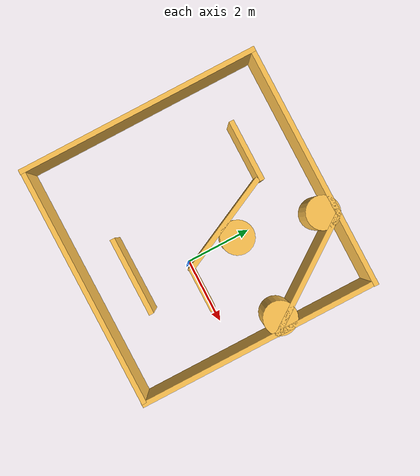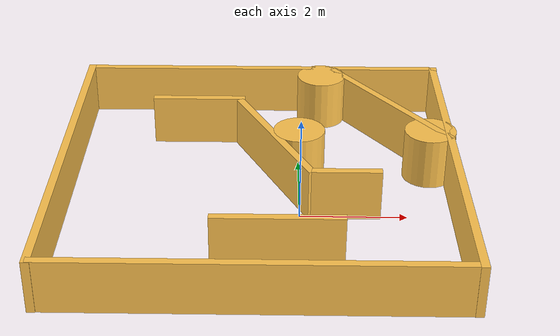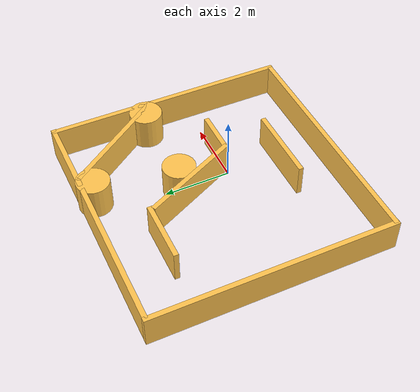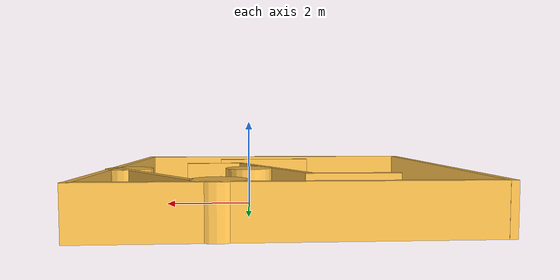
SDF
<?xml version='1.0'?>
<sdf version='1.6'>
  <model name='Maze_ql_1'>
    <link name='Wall_10'>
      <pose frame=''>-2.02568 2.92333 0 0 -0 3.14159</pose>
      <self_collide>0</self_collide>
      <kinematic>0</kinematic>
      <visual name='Wall_10_Visual'>
        <pose frame=''>0 0 0.5 0 -0 0</pose>
        <geometry>
          <box>
            <size>1.8711 0.15 1</size>
          </box>
        </geometry>
        <material>
          <script>
            <uri>file://media/materials/scripts/gazebo.material</uri>
            <name>Gazebo/Grey</name>
          </script>
          <ambient>1 0.764706 0.305882 1</ambient>
          <diffuse>0.7 0.7 0.7 1</diffuse>
          <specular>0.01 0.01 0.01 1</specular>
          <emissive>0 0 0 1</emissive>
          <shader type='pixel'/>
        </material>
        <cast_shadows>1</cast_shadows>
        <transparency>0</transparency>
      </visual>
      <collision name='Wall_10_Collision'>
        <laser_retro>0</laser_retro>
        <max_contacts>10</max_contacts>
        <pose frame=''>0 0 0.5 0 -0 0</pose>
        <geometry>
          <box>
            <size>1.8711 0.15 1</size>
          </box>
        </geometry>
        <surface>
          <friction>
            <ode>
              <mu>1</mu>
              <mu2>1</mu2>
              <fdir1>0 0 0</fdir1>
              <slip1>0</slip1>
              <slip2>0</slip2>
            </ode>
            <torsional>
              <coefficient>1</coefficient>
              <patch_radius>0</patch_radius>
              <surface_radius>0</surface_radius>
              <use_patch_radius>1</use_patch_radius>
              <ode>
                <slip>0</slip>
              </ode>
            </torsional>
          </friction>
          <bounce>
            <restitution_coefficient>0</restitution_coefficient>
            <threshold>1e+06</threshold>
          </bounce>
          <contact>
            <collide_without_contact>0</collide_without_contact>
            <collide_without_contact_bitmask>1</collide_without_contact_bitmask>
            <collide_bitmask>1</collide_bitmask>
            <ode>
              <soft_cfm>0</soft_cfm>
              <soft_erp>0.2</soft_erp>
              <kp>1e+13</kp>
              <kd>1</kd>
              <max_vel>0.01</max_vel>
              <min_depth>0</min_depth>
            </ode>
            <bullet>
              <split_impulse>1</split_impulse>
              <split_impulse_penetration_threshold>-0.01</split_impulse_penetration_threshold>
              <soft_cfm>0</soft_cfm>
              <soft_erp>0.2</soft_erp>
              <kp>1e+13</kp>
              <kd>1</kd>
            </bullet>
          </contact>
        </surface>
      </collision>
    </link>
    <link name='Wall_11_clone'>
      <pose frame=''>-4.44208 0.738947 0 0 0 -1.5708</pose>
      <self_collide>0</self_collide>
      <kinematic>0</kinematic>
      <visual name='ModelPreview_2::Wall_11_clone::Wall_11_Visual'>
        <pose frame=''>0 0 0.5 0 -0 0</pose>
        <geometry>
          <box>
            <size>7.42809 0.15 1</size>
          </box>
        </geometry>
        <material>
          <script>
            <uri>file://media/materials/scripts/gazebo.material</uri>
            <name>Gazebo/Grey</name>
          </script>
          <ambient>1 0.764706 0.305882 1</ambient>
          <diffuse>0.7 0.7 0.7 1</diffuse>
          <specular>0.01 0.01 0.01 1</specular>
          <emissive>0 0 0 1</emissive>
          <shader type='pixel'/>
        </material>
        <cast_shadows>1</cast_shadows>
        <transparency>0</transparency>
      </visual>
      <collision name='Wall_11_Collision'>
        <laser_retro>0</laser_retro>
        <max_contacts>10</max_contacts>
        <pose frame=''>0 0 0.5 0 -0 0</pose>
        <geometry>
          <box>
            <size>7.42809 0.15 1</size>
          </box>
        </geometry>
        <surface>
          <friction>
            <ode>
              <mu>1</mu>
              <mu2>1</mu2>
              <fdir1>0 0 0</fdir1>
              <slip1>0</slip1>
              <slip2>0</slip2>
            </ode>
            <torsional>
              <coefficient>1</coefficient>
              <patch_radius>0</patch_radius>
              <surface_radius>0</surface_radius>
              <use_patch_radius>1</use_patch_radius>
              <ode>
                <slip>0</slip>
              </ode>
            </torsional>
          </friction>
          <bounce>
            <restitution_coefficient>0</restitution_coefficient>
            <threshold>1e+06</threshold>
          </bounce>
          <contact>
            <collide_without_contact>0</collide_without_contact>
            <collide_without_contact_bitmask>1</collide_without_contact_bitmask>
            <collide_bitmask>1</collide_bitmask>
            <ode>
              <soft_cfm>0</soft_cfm>
              <soft_erp>0.2</soft_erp>
              <kp>1e+13</kp>
              <kd>1</kd>
              <max_vel>0.01</max_vel>
              <min_depth>0</min_depth>
            </ode>
            <bullet>
              <split_impulse>1</split_impulse>
              <split_impulse_penetration_threshold>-0.01</split_impulse_penetration_threshold>
              <soft_cfm>0</soft_cfm>
              <soft_erp>0.2</soft_erp>
              <kp>1e+13</kp>
              <kd>1</kd>
            </bullet>
          </contact>
        </surface>
      </collision>
    </link>
    <link name='Wall_14'>
      <pose frame=''>-0.409926 -1.55115 0 0 -0 3.14159</pose>
      <self_collide>0</self_collide>
      <kinematic>0</kinematic>
      <visual name='Wall_14_Visual'>
        <pose frame=''>0 0 0.5 0 -0 0</pose>
        <geometry>
          <box>
            <size>2.36648 0.15 1</size>
          </box>
        </geometry>
        <material>
          <script>
            <uri>file://media/materials/scripts/gazebo.material</uri>
            <name>Gazebo/Grey</name>
          </script>
          <ambient>1 0.764706 0.305882 1</ambient>
          <diffuse>0.7 0.7 0.7 1</diffuse>
          <specular>0.01 0.01 0.01 1</specular>
          <emissive>0 0 0 1</emissive>
          <shader type='pixel'/>
        </material>
        <cast_shadows>1</cast_shadows>
        <transparency>0</transparency>
      </visual>
      <collision name='Wall_14_Collision'>
        <laser_retro>0</laser_retro>
        <max_contacts>10</max_contacts>
        <pose frame=''>0 0 0.5 0 -0 0</pose>
        <geometry>
          <box>
            <size>2.36648 0.15 1</size>
          </box>
        </geometry>
        <surface>
          <friction>
            <ode>
              <mu>1</mu>
              <mu2>1</mu2>
              <fdir1>0 0 0</fdir1>
              <slip1>0</slip1>
              <slip2>0</slip2>
            </ode>
            <torsional>
              <coefficient>1</coefficient>
              <patch_radius>0</patch_radius>
              <surface_radius>0</surface_radius>
              <use_patch_radius>1</use_patch_radius>
              <ode>
                <slip>0</slip>
              </ode>
            </torsional>
          </friction>
          <bounce>
            <restitution_coefficient>0</restitution_coefficient>
            <threshold>1e+06</threshold>
          </bounce>
          <contact>
            <collide_without_contact>0</collide_without_contact>
            <collide_without_contact_bitmask>1</collide_without_contact_bitmask>
            <collide_bitmask>1</collide_bitmask>
            <ode>
              <soft_cfm>0</soft_cfm>
              <soft_erp>0.2</soft_erp>
              <kp>1e+13</kp>
              <kd>1</kd>
              <max_vel>0.01</max_vel>
              <min_depth>0</min_depth>
            </ode>
            <bullet>
              <split_impulse>1</split_impulse>
              <split_impulse_penetration_threshold>-0.01</split_impulse_penetration_threshold>
              <soft_cfm>0</soft_cfm>
              <soft_erp>0.2</soft_erp>
              <kp>1e+13</kp>
              <kd>1</kd>
            </bullet>
          </contact>
        </surface>
      </collision>
    </link>
    <link name='Wall_19'>
      <pose frame=''>0.837565 0.010614 0 0 -0 3.14159</pose>
      <self_collide>0</self_collide>
      <kinematic>0</kinematic>
      <visual name='Wall_19_Visual'>
        <pose frame=''>0 0 0.5 0 -0 0</pose>
        <geometry>
          <box>
            <size>1.32777 0.15 1</size>
          </box>
        </geometry>
        <material>
          <script>
            <uri>file://media/materials/scripts/gazebo.material</uri>
            <name>Gazebo/Grey</name>
          </script>
          <ambient>1 0.764706 0.305882 1</ambient>
          <diffuse>0.7 0.7 0.7 1</diffuse>
          <specular>0.01 0.01 0.01 1</specular>
          <emissive>0 0 0 1</emissive>
          <shader type='pixel'/>
        </material>
        <cast_shadows>1</cast_shadows>
        <transparency>0</transparency>
      </visual>
      <collision name='Wall_19_Collision'>
        <laser_retro>0</laser_retro>
        <max_contacts>10</max_contacts>
        <pose frame=''>0 0 0.5 0 -0 0</pose>
        <geometry>
          <box>
            <size>1.32777 0.15 1</size>
          </box>
        </geometry>
        <surface>
          <friction>
            <ode>
              <mu>1</mu>
              <mu2>1</mu2>
              <fdir1>0 0 0</fdir1>
              <slip1>0</slip1>
              <slip2>0</slip2>
            </ode>
            <torsional>
              <coefficient>1</coefficient>
              <patch_radius>0</patch_radius>
              <surface_radius>0</surface_radius>
              <use_patch_radius>1</use_patch_radius>
              <ode>
                <slip>0</slip>
              </ode>
            </torsional>
          </friction>
          <bounce>
            <restitution_coefficient>0</restitution_coefficient>
            <threshold>1e+06</threshold>
          </bounce>
          <contact>
            <collide_without_contact>0</collide_without_contact>
            <collide_without_contact_bitmask>1</collide_without_contact_bitmask>
            <collide_bitmask>1</collide_bitmask>
            <ode>
              <soft_cfm>0</soft_cfm>
              <soft_erp>0.2</soft_erp>
              <kp>1e+13</kp>
              <kd>1</kd>
              <max_vel>0.01</max_vel>
              <min_depth>0</min_depth>
            </ode>
            <bullet>
              <split_impulse>1</split_impulse>
              <split_impulse_penetration_threshold>-0.01</split_impulse_penetration_threshold>
              <soft_cfm>0</soft_cfm>
              <soft_erp>0.2</soft_erp>
              <kp>1e+13</kp>
              <kd>1</kd>
            </bullet>
          </contact>
        </surface>
      </collision>
    </link>
    <link name='Wall_20'>
      <pose frame=''>-0.484506 1.39698 0 0 -0 2.02352</pose>
      <self_collide>0</self_collide>
      <kinematic>0</kinematic>
      <visual name='Wall_20_Visual'>
        <pose frame=''>0 0 0.5 0 -0 0</pose>
        <geometry>
          <box>
            <size>3.22686 0.15 1</size>
          </box>
        </geometry>
        <material>
          <script>
            <uri>file://media/materials/scripts/gazebo.material</uri>
            <name>Gazebo/Grey</name>
          </script>
          <ambient>1 0.764706 0.305882 1</ambient>
          <diffuse>0.7 0.7 0.7 1</diffuse>
          <specular>0.01 0.01 0.01 1</specular>
          <emissive>0 0 0 1</emissive>
          <shader type='pixel'/>
        </material>
        <cast_shadows>1</cast_shadows>
        <transparency>0</transparency>
      </visual>
      <collision name='Wall_20_Collision'>
        <laser_retro>0</laser_retro>
        <max_contacts>10</max_contacts>
        <pose frame=''>0 0 0.5 0 -0 0</pose>
        <geometry>
          <box>
            <size>3.22686 0.15 1</size>
          </box>
        </geometry>
        <surface>
          <friction>
            <ode>
              <mu>1</mu>
              <mu2>1</mu2>
              <fdir1>0 0 0</fdir1>
              <slip1>0</slip1>
              <slip2>0</slip2>
            </ode>
            <torsional>
              <coefficient>1</coefficient>
              <patch_radius>0</patch_radius>
              <surface_radius>0</surface_radius>
              <use_patch_radius>1</use_patch_radius>
              <ode>
                <slip>0</slip>
              </ode>
            </torsional>
          </friction>
          <bounce>
            <restitution_coefficient>0</restitution_coefficient>
            <threshold>1e+06</threshold>
          </bounce>
          <contact>
            <collide_without_contact>0</collide_without_contact>
            <collide_without_contact_bitmask>1</collide_without_contact_bitmask>
            <collide_bitmask>1</collide_bitmask>
            <ode>
              <soft_cfm>0</soft_cfm>
              <soft_erp>0.2</soft_erp>
              <kp>1e+13</kp>
              <kd>1</kd>
              <max_vel>0.01</max_vel>
              <min_depth>0</min_depth>
            </ode>
            <bullet>
              <split_impulse>1</split_impulse>
              <split_impulse_penetration_threshold>-0.01</split_impulse_penetration_threshold>
              <soft_cfm>0</soft_cfm>
              <soft_erp>0.2</soft_erp>
              <kp>1e+13</kp>
              <kd>1</kd>
            </bullet>
          </contact>
        </surface>
      </collision>
    </link>
    <link name='Wall_24'>
      <pose frame=''>1.8412 2.79579 0 0 0 -0.948986</pose>
      <self_collide>0</self_collide>
      <kinematic>0</kinematic>
      <visual name='Wall_24_Visual'>
        <pose frame=''>0 0 0.5 0 -0 0</pose>
        <geometry>
          <box>
            <size>3.76645 0.15 1</size>
          </box>
        </geometry>
        <material>
          <script>
            <uri>file://media/materials/scripts/gazebo.material</uri>
            <name>Gazebo/Grey</name>
          </script>
          <ambient>1 0.764706 0.305882 1</ambient>
          <diffuse>0.7 0.7 0.7 1</diffuse>
          <specular>0.01 0.01 0.01 1</specular>
          <emissive>0 0 0 1</emissive>
          <shader type='pixel'/>
        </material>
        <cast_shadows>1</cast_shadows>
        <transparency>0</transparency>
      </visual>
      <collision name='Wall_24_Collision'>
        <laser_retro>0</laser_retro>
        <max_contacts>10</max_contacts>
        <pose frame=''>0 0 0.5 0 -0 0</pose>
        <geometry>
          <box>
            <size>3.76645 0.15 1</size>
          </box>
        </geometry>
        <surface>
          <friction>
            <ode>
              <mu>1</mu>
              <mu2>1</mu2>
              <fdir1>0 0 0</fdir1>
              <slip1>0</slip1>
              <slip2>0</slip2>
            </ode>
            <torsional>
              <coefficient>1</coefficient>
              <patch_radius>0</patch_radius>
              <surface_radius>0</surface_radius>
              <use_patch_radius>1</use_patch_radius>
              <ode>
                <slip>0</slip>
              </ode>
            </torsional>
          </friction>
          <bounce>
            <restitution_coefficient>0</restitution_coefficient>
            <threshold>1e+06</threshold>
          </bounce>
          <contact>
            <collide_without_contact>0</collide_without_contact>
            <collide_without_contact_bitmask>1</collide_without_contact_bitmask>
            <collide_bitmask>1</collide_bitmask>
            <ode>
              <soft_cfm>0</soft_cfm>
              <soft_erp>0.2</soft_erp>
              <kp>1e+13</kp>
              <kd>1</kd>
              <max_vel>0.01</max_vel>
              <min_depth>0</min_depth>
            </ode>
            <bullet>
              <split_impulse>1</split_impulse>
              <split_impulse_penetration_threshold>-0.01</split_impulse_penetration_threshold>
              <soft_cfm>0</soft_cfm>
              <soft_erp>0.2</soft_erp>
              <kp>1e+13</kp>
              <kd>1</kd>
            </bullet>
          </contact>
        </surface>
      </collision>
    </link>
    <link name='Wall_6'>
      <pose frame=''>-0.787021 -2.89307 0 0 -0 0</pose>
      <self_collide>0</self_collide>
      <kinematic>0</kinematic>
      <visual name='Wall_6_Visual'>
        <pose frame=''>0 0 0.5 0 -0 0</pose>
        <geometry>
          <box>
            <size>7.34986 0.15 1</size>
          </box>
        </geometry>
        <material>
          <script>
            <uri>file://media/materials/scripts/gazebo.material</uri>
            <name>Gazebo/Grey</name>
          </script>
          <ambient>1 0.764706 0.305882 1</ambient>
          <diffuse>0.7 0.7 0.7 1</diffuse>
          <specular>0.01 0.01 0.01 1</specular>
          <emissive>0 0 0 1</emissive>
          <shader type='pixel'/>
        </material>
        <cast_shadows>1</cast_shadows>
        <transparency>0</transparency>
      </visual>
      <collision name='Wall_6_Collision'>
        <laser_retro>0</laser_retro>
        <max_contacts>10</max_contacts>
        <pose frame=''>0 0 0.5 0 -0 0</pose>
        <geometry>
          <box>
            <size>7.34986 0.15 1</size>
          </box>
        </geometry>
        <surface>
          <friction>
            <ode>
              <mu>1</mu>
              <mu2>1</mu2>
              <fdir1>0 0 0</fdir1>
              <slip1>0</slip1>
              <slip2>0</slip2>
            </ode>
            <torsional>
              <coefficient>1</coefficient>
              <patch_radius>0</patch_radius>
              <surface_radius>0</surface_radius>
              <use_patch_radius>1</use_patch_radius>
              <ode>
                <slip>0</slip>
              </ode>
            </torsional>
          </friction>
          <bounce>
            <restitution_coefficient>0</restitution_coefficient>
            <threshold>1e+06</threshold>
          </bounce>
          <contact>
            <collide_without_contact>0</collide_without_contact>
            <collide_without_contact_bitmask>1</collide_without_contact_bitmask>
            <collide_bitmask>1</collide_bitmask>
            <ode>
              <soft_cfm>0</soft_cfm>
              <soft_erp>0.2</soft_erp>
              <kp>1e+13</kp>
              <kd>1</kd>
              <max_vel>0.01</max_vel>
              <min_depth>0</min_depth>
            </ode>
            <bullet>
              <split_impulse>1</split_impulse>
              <split_impulse_penetration_threshold>-0.01</split_impulse_penetration_threshold>
              <soft_cfm>0</soft_cfm>
              <soft_erp>0.2</soft_erp>
              <kp>1e+13</kp>
              <kd>1</kd>
            </bullet>
          </contact>
        </surface>
      </collision>
    </link>
    <link name='Wall_6_clone'>
      <pose frame=''>-0.718431 4.37517 0 0 -0 0</pose>
      <self_collide>0</self_collide>
      <kinematic>0</kinematic>
      <visual name='ModelPreview_2::Wall_6_clone::Wall_6_Visual'>
        <pose frame=''>0 0 0.5 0 -0 0</pose>
        <geometry>
          <box>
            <size>7.41907 0.15 1</size>
          </box>
        </geometry>
        <material>
          <script>
            <uri>file://media/materials/scripts/gazebo.material</uri>
            <name>Gazebo/Grey</name>
          </script>
          <ambient>1 0.764706 0.305882 1</ambient>
          <diffuse>0.7 0.7 0.7 1</diffuse>
          <specular>0.01 0.01 0.01 1</specular>
          <emissive>0 0 0 1</emissive>
          <shader type='pixel'/>
        </material>
        <cast_shadows>1</cast_shadows>
        <transparency>0</transparency>
      </visual>
      <collision name='Wall_6_Collision'>
        <laser_retro>0</laser_retro>
        <max_contacts>10</max_contacts>
        <pose frame=''>0 0 0.5 0 -0 0</pose>
        <geometry>
          <box>
            <size>7.41907 0.15 1</size>
          </box>
        </geometry>
        <surface>
          <friction>
            <ode>
              <mu>1</mu>
              <mu2>1</mu2>
              <fdir1>0 0 0</fdir1>
              <slip1>0</slip1>
              <slip2>0</slip2>
            </ode>
            <torsional>
              <coefficient>1</coefficient>
              <patch_radius>0</patch_radius>
              <surface_radius>0</surface_radius>
              <use_patch_radius>1</use_patch_radius>
              <ode>
                <slip>0</slip>
              </ode>
            </torsional>
          </friction>
          <bounce>
            <restitution_coefficient>0</restitution_coefficient>
            <threshold>1e+06</threshold>
          </bounce>
          <contact>
            <collide_without_contact>0</collide_without_contact>
            <collide_without_contact_bitmask>1</collide_without_contact_bitmask>
            <collide_bitmask>1</collide_bitmask>
            <ode>
              <soft_cfm>0</soft_cfm>
              <soft_erp>0.2</soft_erp>
              <kp>1e+13</kp>
              <kd>1</kd>
              <max_vel>0.01</max_vel>
              <min_depth>0</min_depth>
            </ode>
            <bullet>
              <split_impulse>1</split_impulse>
              <split_impulse_penetration_threshold>-0.01</split_impulse_penetration_threshold>
              <soft_cfm>0</soft_cfm>
              <soft_erp>0.2</soft_erp>
              <kp>1e+13</kp>
              <kd>1</kd>
            </bullet>
          </contact>
        </surface>
      </collision>
    </link>
    <link name='Wall_7'>
      <pose frame=''>2.90228 0.736783 0 0 -0 1.5708</pose>
      <self_collide>0</self_collide>
      <kinematic>0</kinematic>
      <visual name='Wall_7_Visual'>
        <pose frame=''>0 0 0.5 0 -0 0</pose>
        <geometry>
          <box>
            <size>7.42238 0.15 1</size>
          </box>
        </geometry>
        <material>
          <script>
            <uri>file://media/materials/scripts/gazebo.material</uri>
            <name>Gazebo/Grey</name>
          </script>
          <ambient>1 0.764706 0.305882 1</ambient>
          <diffuse>0.7 0.7 0.7 1</diffuse>
          <specular>0.01 0.01 0.01 1</specular>
          <emissive>0 0 0 1</emissive>
          <shader type='pixel'/>
        </material>
        <cast_shadows>1</cast_shadows>
        <transparency>0</transparency>
      </visual>
      <collision name='Wall_7_Collision'>
        <laser_retro>0</laser_retro>
        <max_contacts>10</max_contacts>
        <pose frame=''>0 0 0.5 0 -0 0</pose>
        <geometry>
          <box>
            <size>7.42238 0.15 1</size>
          </box>
        </geometry>
        <surface>
          <friction>
            <ode>
              <mu>1</mu>
              <mu2>1</mu2>
              <fdir1>0 0 0</fdir1>
              <slip1>0</slip1>
              <slip2>0</slip2>
            </ode>
            <torsional>
              <coefficient>1</coefficient>
              <patch_radius>0</patch_radius>
              <surface_radius>0</surface_radius>
              <use_patch_radius>1</use_patch_radius>
              <ode>
                <slip>0</slip>
              </ode>
            </torsional>
          </friction>
          <bounce>
            <restitution_coefficient>0</restitution_coefficient>
            <threshold>1e+06</threshold>
          </bounce>
          <contact>
            <collide_without_contact>0</collide_without_contact>
            <collide_without_contact_bitmask>1</collide_without_contact_bitmask>
            <collide_bitmask>1</collide_bitmask>
            <ode>
              <soft_cfm>0</soft_cfm>
              <soft_erp>0.2</soft_erp>
              <kp>1e+13</kp>
              <kd>1</kd>
              <max_vel>0.01</max_vel>
              <min_depth>0</min_depth>
            </ode>
            <bullet>
              <split_impulse>1</split_impulse>
              <split_impulse_penetration_threshold>-0.01</split_impulse_penetration_threshold>
              <soft_cfm>0</soft_cfm>
              <soft_erp>0.2</soft_erp>
              <kp>1e+13</kp>
              <kd>1</kd>
            </bullet>
          </contact>
        </surface>
      </collision>
    </link>
    <link name='link_2'>
      <pose frame=''>0.498835 4 0.5 0 -0 0</pose>
      <self_collide>0</self_collide>
      <kinematic>0</kinematic>
      <visual name='visual'>
        <pose frame=''>0 0 0 0 -0 0</pose>
        <geometry>
          <cylinder>
            <radius>0.5</radius>
            <length>1</length>
          </cylinder>
        </geometry>
        <material>
          <script>
            <uri>file://media/materials/scripts/gazebo.material</uri>
            <name>Gazebo/Grey</name>
          </script>
          <ambient>1 0.764706 0.305882 1</ambient>
          <diffuse>0.7 0.7 0.7 1</diffuse>
          <specular>0.01 0.01 0.01 1</specular>
          <emissive>0 0 0 1</emissive>
          <shader type='pixel'/>
        </material>
        <cast_shadows>1</cast_shadows>
        <transparency>0</transparency>
        <cast_shadows>1</cast_shadows>
        <transparency>0</transparency>
      </visual>
      <collision name='collision'>
        <laser_retro>0</laser_retro>
        <max_contacts>10</max_contacts>
        <pose frame=''>0 0 0 0 -0 0</pose>
        <geometry>
          <cylinder>
            <radius>0.5</radius>
            <length>1</length>
          </cylinder>
        </geometry>
        <surface>
          <friction>
            <ode>
              <mu>1</mu>
              <mu2>1</mu2>
              <fdir1>0 0 0</fdir1>
              <slip1>0</slip1>
              <slip2>0</slip2>
            </ode>
            <torsional>
              <coefficient>1</coefficient>
              <patch_radius>0</patch_radius>
              <surface_radius>0</surface_radius>
              <use_patch_radius>1</use_patch_radius>
              <ode>
                <slip>0</slip>
              </ode>
            </torsional>
          </friction>
          <bounce>
            <restitution_coefficient>0</restitution_coefficient>
            <threshold>1e+06</threshold>
          </bounce>
          <contact>
            <collide_without_contact>0</collide_without_contact>
            <collide_without_contact_bitmask>1</collide_without_contact_bitmask>
            <collide_bitmask>1</collide_bitmask>
            <ode>
              <soft_cfm>0</soft_cfm>
              <soft_erp>0.2</soft_erp>
              <kp>1e+13</kp>
              <kd>1</kd>
              <max_vel>0.01</max_vel>
              <min_depth>0</min_depth>
            </ode>
            <bullet>
              <split_impulse>1</split_impulse>
              <split_impulse_penetration_threshold>-0.01</split_impulse_penetration_threshold>
              <soft_cfm>0</soft_cfm>
              <soft_erp>0.2</soft_erp>
              <kp>1e+13</kp>
              <kd>1</kd>
            </bullet>
          </contact>
        </surface>
      </collision>
    </link>
    <link name='link_3'>
      <pose frame=''>0 1.56543 0.5 0 -0 0</pose>
      <self_collide>0</self_collide>
      <kinematic>0</kinematic>
      <visual name='visual'>
        <pose frame=''>0 0 0 0 -0 0</pose>
        <geometry>
          <cylinder>
            <radius>0.5</radius>
            <length>1</length>
          </cylinder>
        </geometry>
        <material>
          <script>
            <uri>file://media/materials/scripts/gazebo.material</uri>
            <name>Gazebo/Grey</name>
          </script>
          <ambient>1 0.764706 0.305882 1</ambient>
          <diffuse>0.7 0.7 0.7 1</diffuse>
          <specular>0.01 0.01 0.01 1</specular>
          <emissive>0 0 0 1</emissive>
          <shader type='pixel'/>
        </material>
        <cast_shadows>1</cast_shadows>
        <transparency>0</transparency>
        <cast_shadows>1</cast_shadows>
        <transparency>0</transparency>
      </visual>
      <collision name='collision'>
        <laser_retro>0</laser_retro>
        <max_contacts>10</max_contacts>
        <pose frame=''>0 0 0 0 -0 0</pose>
        <geometry>
          <cylinder>
            <radius>0.5</radius>
            <length>1</length>
          </cylinder>
        </geometry>
        <surface>
          <friction>
            <ode>
              <mu>1</mu>
              <mu2>1</mu2>
              <fdir1>0 0 0</fdir1>
              <slip1>0</slip1>
              <slip2>0</slip2>
            </ode>
            <torsional>
              <coefficient>1</coefficient>
              <patch_radius>0</patch_radius>
              <surface_radius>0</surface_radius>
              <use_patch_radius>1</use_patch_radius>
              <ode>
                <slip>0</slip>
              </ode>
            </torsional>
          </friction>
          <bounce>
            <restitution_coefficient>0</restitution_coefficient>
            <threshold>1e+06</threshold>
          </bounce>
          <contact>
            <collide_without_contact>0</collide_without_contact>
            <collide_without_contact_bitmask>1</collide_without_contact_bitmask>
            <collide_bitmask>1</collide_bitmask>
            <ode>
              <soft_cfm>0</soft_cfm>
              <soft_erp>0.2</soft_erp>
              <kp>1e+13</kp>
              <kd>1</kd>
              <max_vel>0.01</max_vel>
              <min_depth>0</min_depth>
            </ode>
            <bullet>
              <split_impulse>1</split_impulse>
              <split_impulse_penetration_threshold>-0.01</split_impulse_penetration_threshold>
              <soft_cfm>0</soft_cfm>
              <soft_erp>0.2</soft_erp>
              <kp>1e+13</kp>
              <kd>1</kd>
            </bullet>
          </contact>
        </surface>
      </collision>
    </link>
    <link name='link_4'>
      <pose frame=''>2.54621 1.57728 0.5 0 -0 0</pose>
      <self_collide>0</self_collide>
      <kinematic>0</kinematic>
      <visual name='visual'>
        <pose frame=''>0 0 0 0 -0 0</pose>
        <geometry>
          <cylinder>
            <radius>0.5</radius>
            <length>1</length>
          </cylinder>
        </geometry>
        <material>
          <script>
            <uri>file://media/materials/scripts/gazebo.material</uri>
            <name>Gazebo/Grey</name>
          </script>
          <ambient>1 0.764706 0.305882 1</ambient>
          <diffuse>0.7 0.7 0.7 1</diffuse>
          <specular>0.01 0.01 0.01 1</specular>
          <emissive>0 0 0 1</emissive>
          <shader type='pixel'/>
        </material>
        <cast_shadows>1</cast_shadows>
        <transparency>0</transparency>
        <cast_shadows>1</cast_shadows>
        <transparency>0</transparency>
      </visual>
      <collision name='collision'>
        <laser_retro>0</laser_retro>
        <max_contacts>10</max_contacts>
        <pose frame=''>0 0 0 0 -0 0</pose>
        <geometry>
          <cylinder>
            <radius>0.5</radius>
            <length>1</length>
          </cylinder>
        </geometry>
        <surface>
          <friction>
            <ode>
              <mu>1</mu>
              <mu2>1</mu2>
              <fdir1>0 0 0</fdir1>
              <slip1>0</slip1>
              <slip2>0</slip2>
            </ode>
            <torsional>
              <coefficient>1</coefficient>
              <patch_radius>0</patch_radius>
              <surface_radius>0</surface_radius>
              <use_patch_radius>1</use_patch_radius>
              <ode>
                <slip>0</slip>
              </ode>
            </torsional>
          </friction>
          <bounce>
            <restitution_coefficient>0</restitution_coefficient>
            <threshold>1e+06</threshold>
          </bounce>
          <contact>
            <collide_without_contact>0</collide_without_contact>
            <collide_without_contact_bitmask>1</collide_without_contact_bitmask>
            <collide_bitmask>1</collide_bitmask>
            <ode>
              <soft_cfm>0</soft_cfm>
              <soft_erp>0.2</soft_erp>
              <kp>1e+13</kp>
              <kd>1</kd>
              <max_vel>0.01</max_vel>
              <min_depth>0</min_depth>
            </ode>
            <bullet>
              <split_impulse>1</split_impulse>
              <split_impulse_penetration_threshold>-0.01</split_impulse_penetration_threshold>
              <soft_cfm>0</soft_cfm>
              <soft_erp>0.2</soft_erp>
              <kp>1e+13</kp>
              <kd>1</kd>
            </bullet>
          </contact>
        </surface>
      </collision>
    </link>
    <static>1</static>
    <allow_auto_disable>1</allow_auto_disable>
  </model>
</sdf>
